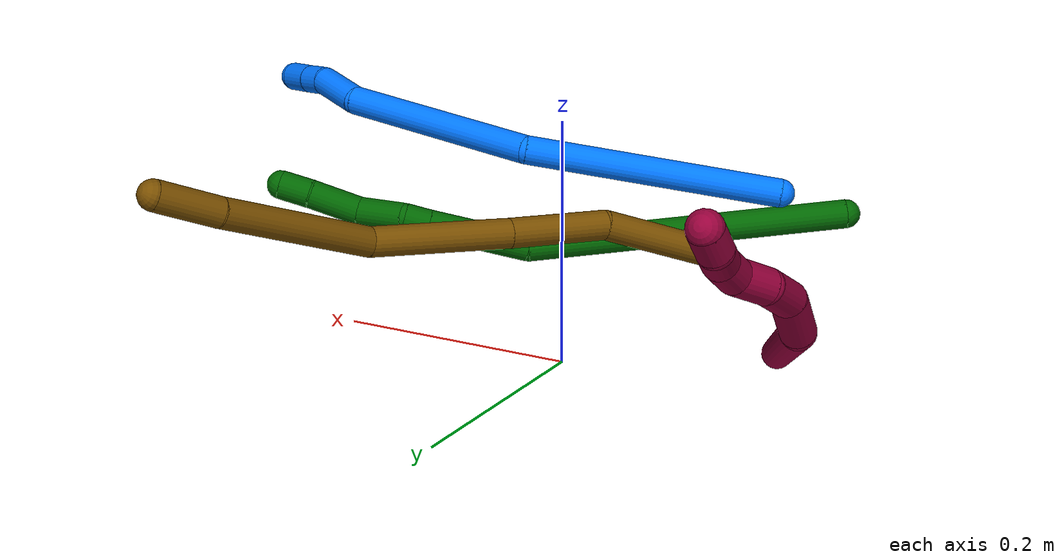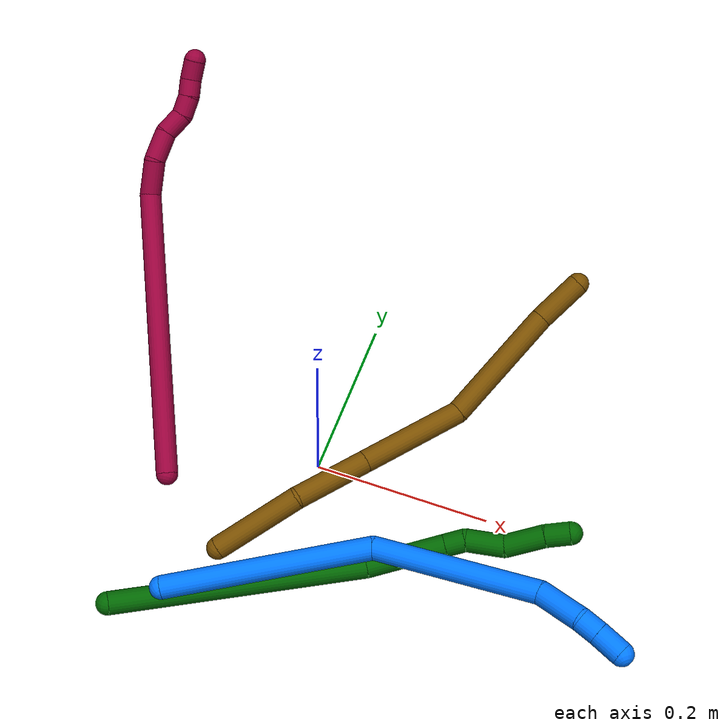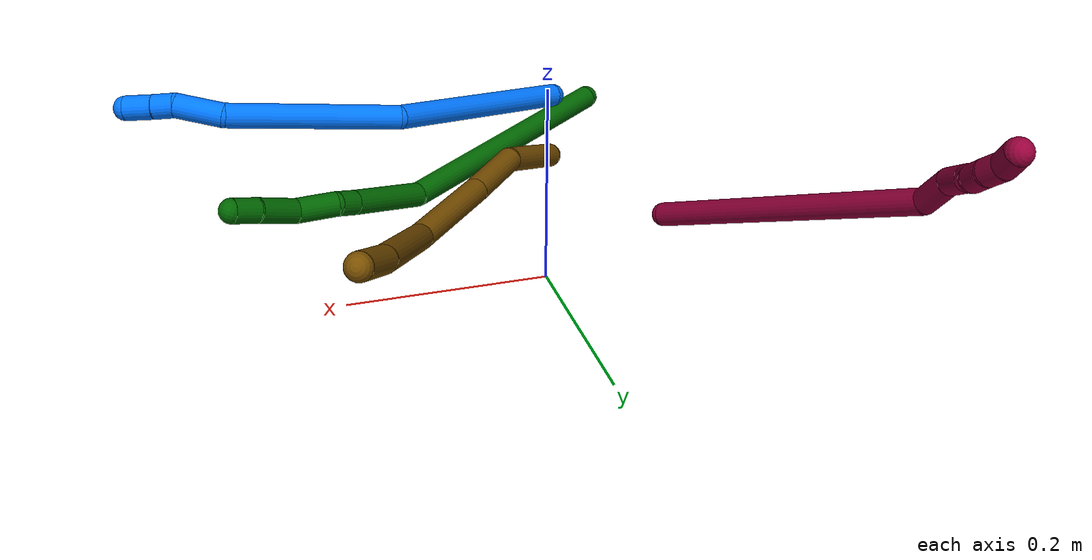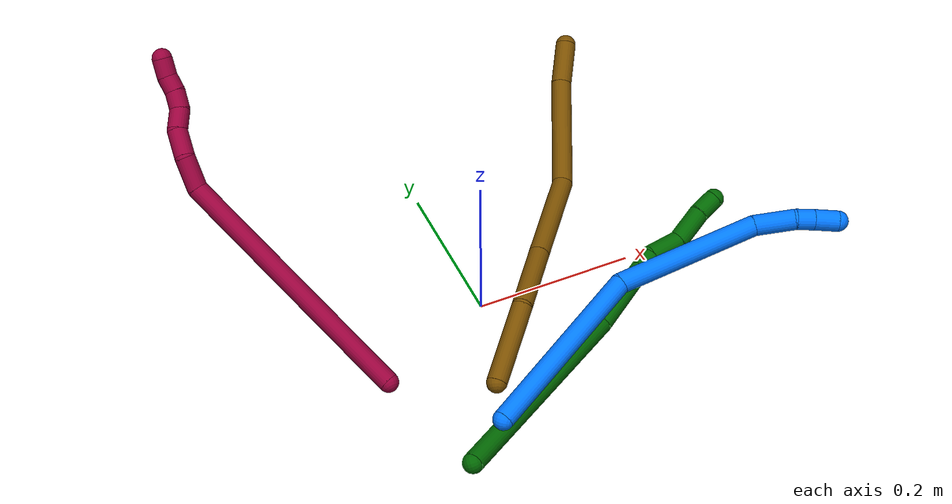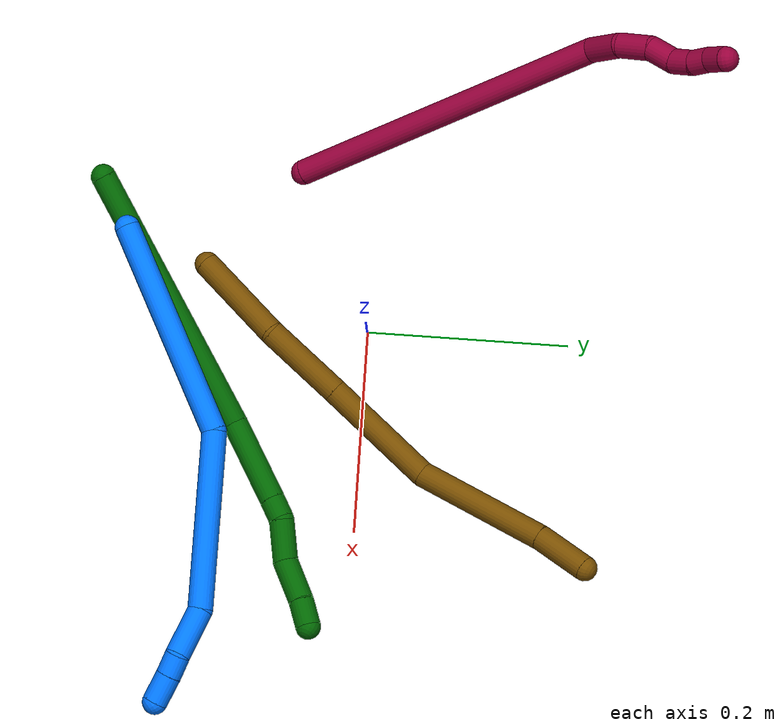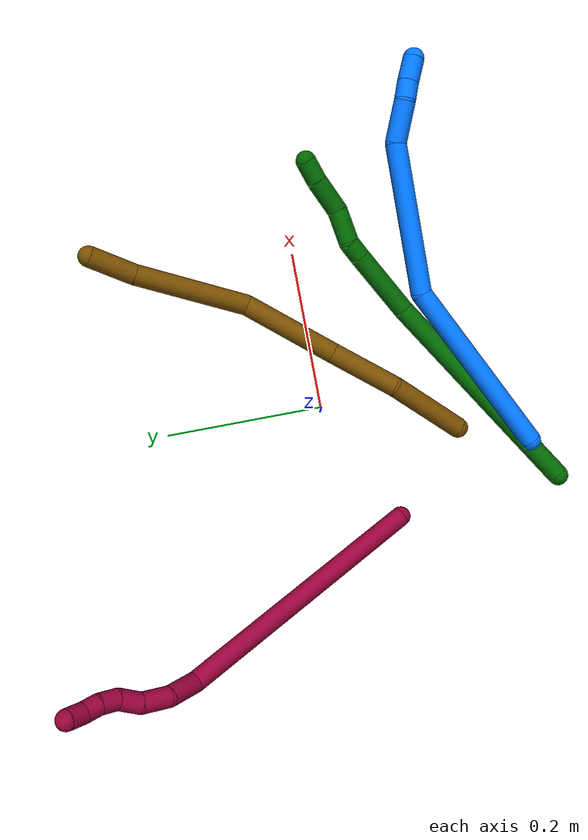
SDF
<sdf version="1.7">
 <world name="default">
  <model name="6">
   <static>0</static>
   <link name="6">
    <collision name="collision-cylinder-e_1_1_4">
     <pose>0.106081 0.048483 0.074376 -0.577685 0.873937 -0.275828</pose>
     <geometry><cylinder><radius>0.0125</radius><length>0.276662</length></cylinder></geometry>
     <surface>
      <friction><ode><mu>1.16</mu><mu2>1.16</mu2><slip1>0</slip1><slip2>0</slip2></ode></friction>
      <contact><ode><kp>1e+06</kp><kd>1</kd><max_vel>0</max_vel><min_depth>0.001</min_depth></ode></contact>
     </surface>
    </collision>
    <visual name="visual-cylinder-e_1_1_4">
     <pose>0.106081 0.048483 0.074376 -0.577685 0.873937 -0.275828</pose>
     <geometry><cylinder><radius>0.0125</radius><length>0.276662</length></cylinder></geometry>
     <material><ambient>0 0.392157 0.003922 1</ambient></material>
    </visual>
    <collision name="collision-cylinder-e_2_4_5">
     <pose>0.234899 0.120402 0.178198 -0.672221 0.543478 -0.194077</pose>
     <geometry><cylinder><radius>0.0125</radius><length>0.08794</length></cylinder></geometry>
     <surface>
      <friction><ode><mu>1.16</mu><mu2>1.16</mu2><slip1>0</slip1><slip2>0</slip2></ode></friction>
      <contact><ode><kp>1e+06</kp><kd>1</kd><max_vel>0</max_vel><min_depth>0.001</min_depth></ode></contact>
     </surface>
    </collision>
    <visual name="visual-cylinder-e_2_4_5">
     <pose>0.234899 0.120402 0.178198 -0.672221 0.543478 -0.194077</pose>
     <geometry><cylinder><radius>0.0125</radius><length>0.08794</length></cylinder></geometry>
     <material><ambient>0 0.392157 0.003922 1</ambient></material>
    </visual>
    <collision name="collision-cylinder-e_3_5_6">
     <pose>0.262987 0.149715 0.215215 -0.660172 0.509177 -0.177854</pose>
     <geometry><cylinder><radius>0.0125</radius><length>0.021953</length></cylinder></geometry>
     <surface>
      <friction><ode><mu>1.16</mu><mu2>1.16</mu2><slip1>0</slip1><slip2>0</slip2></ode></friction>
      <contact><ode><kp>1e+06</kp><kd>1</kd><max_vel>0</max_vel><min_depth>0.001</min_depth></ode></contact>
     </surface>
    </collision>
    <visual name="visual-cylinder-e_3_5_6">
     <pose>0.262987 0.149715 0.215215 -0.660172 0.509177 -0.177854</pose>
     <geometry><cylinder><radius>0.0125</radius><length>0.021953</length></cylinder></geometry>
     <material><ambient>0 0.392157 0.003922 1</ambient></material>
    </visual>
    <collision name="collision-cylinder-e_4_6_7">
     <pose>0.279787 0.158746 0.239991 -0.181261 0.579577 -0.054184</pose>
     <geometry><cylinder><radius>0.0125</radius><length>0.041813</length></cylinder></geometry>
     <surface>
      <friction><ode><mu>1.16</mu><mu2>1.16</mu2><slip1>0</slip1><slip2>0</slip2></ode></friction>
      <contact><ode><kp>1e+06</kp><kd>1</kd><max_vel>0</max_vel><min_depth>0.001</min_depth></ode></contact>
     </surface>
    </collision>
    <visual name="visual-cylinder-e_4_6_7">
     <pose>0.279787 0.158746 0.239991 -0.181261 0.579577 -0.054184</pose>
     <geometry><cylinder><radius>0.0125</radius><length>0.041813</length></cylinder></geometry>
     <material><ambient>0 0.392157 0.003922 1</ambient></material>
    </visual>
    <collision name="collision-cylinder-e_5_7_8">
     <pose>0.300516 0.173887 0.273494 -0.634209 0.430037 -0.1431</pose>
     <geometry><cylinder><radius>0.0125</radius><length>0.044515</length></cylinder></geometry>
     <surface>
      <friction><ode><mu>1.16</mu><mu2>1.16</mu2><slip1>0</slip1><slip2>0</slip2></ode></friction>
      <contact><ode><kp>1e+06</kp><kd>1</kd><max_vel>0</max_vel><min_depth>0.001</min_depth></ode></contact>
     </surface>
    </collision>
    <visual name="visual-cylinder-e_5_7_8">
     <pose>0.300516 0.173887 0.273494 -0.634209 0.430037 -0.1431</pose>
     <geometry><cylinder><radius>0.0125</radius><length>0.044515</length></cylinder></geometry>
     <material><ambient>0 0.392157 0.003922 1</ambient></material>
    </visual>
    <collision name="collision-cylinder-e_6_8_2">
     <pose>0.31587 0.191496 0.30053 -0.482195 0.464542 -0.11619</pose>
     <geometry><cylinder><radius>0.0125</radius><length>0.027118</length></cylinder></geometry>
     <surface>
      <friction><ode><mu>1.16</mu><mu2>1.16</mu2><slip1>0</slip1><slip2>0</slip2></ode></friction>
      <contact><ode><kp>1e+06</kp><kd>1</kd><max_vel>0</max_vel><min_depth>0.001</min_depth></ode></contact>
     </surface>
    </collision>
    <visual name="visual-cylinder-e_6_8_2">
     <pose>0.31587 0.191496 0.30053 -0.482195 0.464542 -0.11619</pose>
     <geometry><cylinder><radius>0.0125</radius><length>0.027118</length></cylinder></geometry>
     <material><ambient>0 0.392157 0.003922 1</ambient></material>
    </visual>
    <collision name="collision-sphere-2">
     <pose>0.321945 0.197117 0.31127 0 -0 0</pose>
     <geometry><sphere><radius>0.0125</radius></sphere></geometry>
     <surface>
      <friction><ode><mu>1.16</mu><mu2>1.16</mu2><slip1>0</slip1><slip2>0</slip2></ode></friction>
      <contact><ode><kp>1e+06</kp><kd>1</kd><max_vel>0</max_vel><min_depth>0.001</min_depth></ode></contact>
     </surface>
    </collision>
    <visual name="visual-sphere-2">
     <pose>0.321945 0.197117 0.31127 0 -0 0</pose>
     <geometry><sphere><radius>0.0125</radius></sphere></geometry>
     <material><ambient>0 0.392157 0.003922 1</ambient></material>
    </visual>
    <collision name="collision-sphere-4">
     <pose>0.212161 0.096966 0.148751 0 -0 0</pose>
     <geometry><sphere><radius>0.0125</radius></sphere></geometry>
     <surface>
      <friction><ode><mu>1.16</mu><mu2>1.16</mu2><slip1>0</slip1><slip2>0</slip2></ode></friction>
      <contact><ode><kp>1e+06</kp><kd>1</kd><max_vel>0</max_vel><min_depth>0.001</min_depth></ode></contact>
     </surface>
    </collision>
    <visual name="visual-sphere-4">
     <pose>0.212161 0.096966 0.148751 0 -0 0</pose>
     <geometry><sphere><radius>0.0125</radius></sphere></geometry>
     <material><ambient>0 0.392157 0.003922 1</ambient></material>
    </visual>
    <collision name="collision-sphere-1">
     <geometry><sphere><radius>0.0125</radius></sphere></geometry>
     <surface>
      <friction><ode><mu>1.16</mu><mu2>1.16</mu2><slip1>0</slip1><slip2>0</slip2></ode></friction>
      <contact><ode><kp>1e+06</kp><kd>1</kd><max_vel>0</max_vel><min_depth>0.001</min_depth></ode></contact>
     </surface>
    </collision>
    <visual name="visual-sphere-1">
     <geometry><sphere><radius>0.0125</radius></sphere></geometry>
     <material><ambient>0 0.392157 0.003922 1</ambient></material>
    </visual>
    <collision name="collision-sphere-8">
     <pose>0.309796 0.185875 0.289791 0 -0 0</pose>
     <geometry><sphere><radius>0.0125</radius></sphere></geometry>
     <surface>
      <friction><ode><mu>1.16</mu><mu2>1.16</mu2><slip1>0</slip1><slip2>0</slip2></ode></friction>
      <contact><ode><kp>1e+06</kp><kd>1</kd><max_vel>0</max_vel><min_depth>0.001</min_depth></ode></contact>
     </surface>
    </collision>
    <visual name="visual-sphere-8">
     <pose>0.309796 0.185875 0.289791 0 -0 0</pose>
     <geometry><sphere><radius>0.0125</radius></sphere></geometry>
     <material><ambient>0 0.392157 0.003922 1</ambient></material>
    </visual>
    <collision name="collision-sphere-5">
     <pose>0.257636 0.143838 0.207645 0 -0 0</pose>
     <geometry><sphere><radius>0.0125</radius></sphere></geometry>
     <surface>
      <friction><ode><mu>1.16</mu><mu2>1.16</mu2><slip1>0</slip1><slip2>0</slip2></ode></friction>
      <contact><ode><kp>1e+06</kp><kd>1</kd><max_vel>0</max_vel><min_depth>0.001</min_depth></ode></contact>
     </surface>
    </collision>
    <visual name="visual-sphere-5">
     <pose>0.257636 0.143838 0.207645 0 -0 0</pose>
     <geometry><sphere><radius>0.0125</radius></sphere></geometry>
     <material><ambient>0 0.392157 0.003922 1</ambient></material>
    </visual>
    <collision name="collision-sphere-6">
     <pose>0.268338 0.155593 0.222786 0 -0 0</pose>
     <geometry><sphere><radius>0.0125</radius></sphere></geometry>
     <surface>
      <friction><ode><mu>1.16</mu><mu2>1.16</mu2><slip1>0</slip1><slip2>0</slip2></ode></friction>
      <contact><ode><kp>1e+06</kp><kd>1</kd><max_vel>0</max_vel><min_depth>0.001</min_depth></ode></contact>
     </surface>
    </collision>
    <visual name="visual-sphere-6">
     <pose>0.268338 0.155593 0.222786 0 -0 0</pose>
     <geometry><sphere><radius>0.0125</radius></sphere></geometry>
     <material><ambient>0 0.392157 0.003922 1</ambient></material>
    </visual>
    <collision name="collision-sphere-7">
     <pose>0.291237 0.161899 0.257197 0 -0 0</pose>
     <geometry><sphere><radius>0.0125</radius></sphere></geometry>
     <surface>
      <friction><ode><mu>1.16</mu><mu2>1.16</mu2><slip1>0</slip1><slip2>0</slip2></ode></friction>
      <contact><ode><kp>1e+06</kp><kd>1</kd><max_vel>0</max_vel><min_depth>0.001</min_depth></ode></contact>
     </surface>
    </collision>
    <visual name="visual-sphere-7">
     <pose>0.291237 0.161899 0.257197 0 -0 0</pose>
     <geometry><sphere><radius>0.0125</radius></sphere></geometry>
     <material><ambient>0 0.392157 0.003922 1</ambient></material>
    </visual>
    <inertial>
     <pose>0.178841 0.093719 0.142662 0 -0 0</pose>
     <mass>0.5</mass>
     <inertia>
      <ixx>0.000868</ixx>
      <ixy>0</ixy>
      <ixz>0</ixz>
      <iyy>0.001396</iyy>
      <iyz>0</iyz>
      <izz>-0.002041</izz>
     </inertia>
    </inertial>
   </link>
   <pose>-0.132357 -0.270367 0.072214 1.05449 0.735415 0.859907</pose>
  </model>
  <model name="8">
   <static>0</static>
   <link name="8">
    <collision name="collision-cylinder-e_1_1_4">
     <pose>0.011052 0.046044 0.158204 -0.283219 0.066973 -0.009551</pose>
     <geometry><cylinder><radius>0.0125</radius><length>0.330277</length></cylinder></geometry>
     <surface>
      <friction><ode><mu>1.16</mu><mu2>1.16</mu2><slip1>0</slip1><slip2>0</slip2></ode></friction>
      <contact><ode><kp>1e+06</kp><kd>1</kd><max_vel>0</max_vel><min_depth>0.001</min_depth></ode></contact>
     </surface>
    </collision>
    <visual name="visual-cylinder-e_1_1_4">
     <pose>0.011052 0.046044 0.158204 -0.283219 0.066973 -0.009551</pose>
     <geometry><cylinder><radius>0.0125</radius><length>0.330277</length></cylinder></geometry>
     <material><ambient>0.584314 0 0.227451 1</ambient></material>
    </visual>
    <collision name="collision-cylinder-e_2_4_5">
     <pose>0.0137 0.094037 0.335172 -0.103466 -0.419049 0.02202</pose>
     <geometry><cylinder><radius>0.0125</radius><length>0.041303</length></cylinder></geometry>
     <surface>
      <friction><ode><mu>1.16</mu><mu2>1.16</mu2><slip1>0</slip1><slip2>0</slip2></ode></friction>
      <contact><ode><kp>1e+06</kp><kd>1</kd><max_vel>0</max_vel><min_depth>0.001</min_depth></ode></contact>
     </surface>
    </collision>
    <visual name="visual-cylinder-e_2_4_5">
     <pose>0.0137 0.094037 0.335172 -0.103466 -0.419049 0.02202</pose>
     <geometry><cylinder><radius>0.0125</radius><length>0.041303</length></cylinder></geometry>
     <material><ambient>0.584314 0 0.227451 1</ambient></material>
    </visual>
    <collision name="collision-cylinder-e_3_5_6">
     <pose>0.002817 0.093354 0.370825 0.154533 -0.144097 -0.011175</pose>
     <geometry><cylinder><radius>0.0125</radius><length>0.034543</length></cylinder></geometry>
     <surface>
      <friction><ode><mu>1.16</mu><mu2>1.16</mu2><slip1>0</slip1><slip2>0</slip2></ode></friction>
      <contact><ode><kp>1e+06</kp><kd>1</kd><max_vel>0</max_vel><min_depth>0.001</min_depth></ode></contact>
     </surface>
    </collision>
    <visual name="visual-cylinder-e_3_5_6">
     <pose>0.002817 0.093354 0.370825 0.154533 -0.144097 -0.011175</pose>
     <geometry><cylinder><radius>0.0125</radius><length>0.034543</length></cylinder></geometry>
     <material><ambient>0.584314 0 0.227451 1</ambient></material>
    </visual>
    <collision name="collision-cylinder-e_4_6_7">
     <pose>-0.002127 0.083747 0.399376 0.539119 -0.179356 -0.049676</pose>
     <geometry><cylinder><radius>0.0125</radius><length>0.027623</length></cylinder></geometry>
     <surface>
      <friction><ode><mu>1.16</mu><mu2>1.16</mu2><slip1>0</slip1><slip2>0</slip2></ode></friction>
      <contact><ode><kp>1e+06</kp><kd>1</kd><max_vel>0</max_vel><min_depth>0.001</min_depth></ode></contact>
     </surface>
    </collision>
    <visual name="visual-cylinder-e_4_6_7">
     <pose>-0.002127 0.083747 0.399376 0.539119 -0.179356 -0.049676</pose>
     <geometry><cylinder><radius>0.0125</radius><length>0.027623</length></cylinder></geometry>
     <material><ambient>0.584314 0 0.227451 1</ambient></material>
    </visual>
    <collision name="collision-cylinder-e_5_7_8">
     <pose>-0.007546 0.075449 0.422104 0.118781 -0.259177 -0.015497</pose>
     <geometry><cylinder><radius>0.0125</radius><length>0.02306</length></cylinder></geometry>
     <surface>
      <friction><ode><mu>1.16</mu><mu2>1.16</mu2><slip1>0</slip1><slip2>0</slip2></ode></friction>
      <contact><ode><kp>1e+06</kp><kd>1</kd><max_vel>0</max_vel><min_depth>0.001</min_depth></ode></contact>
     </surface>
    </collision>
    <visual name="visual-cylinder-e_5_7_8">
     <pose>-0.007546 0.075449 0.422104 0.118781 -0.259177 -0.015497</pose>
     <geometry><cylinder><radius>0.0125</radius><length>0.02306</length></cylinder></geometry>
     <material><ambient>0.584314 0 0.227451 1</ambient></material>
    </visual>
    <collision name="collision-cylinder-e_6_8_9">
     <pose>-0.012658 0.07526 0.442975 -0.114946 -0.215223 0.012431</pose>
     <geometry><cylinder><radius>0.0125</radius><length>0.020204</length></cylinder></geometry>
     <surface>
      <friction><ode><mu>1.16</mu><mu2>1.16</mu2><slip1>0</slip1><slip2>0</slip2></ode></friction>
      <contact><ode><kp>1e+06</kp><kd>1</kd><max_vel>0</max_vel><min_depth>0.001</min_depth></ode></contact>
     </surface>
    </collision>
    <visual name="visual-cylinder-e_6_8_9">
     <pose>-0.012658 0.07526 0.442975 -0.114946 -0.215223 0.012431</pose>
     <geometry><cylinder><radius>0.0125</radius><length>0.020204</length></cylinder></geometry>
     <material><ambient>0.584314 0 0.227451 1</ambient></material>
    </visual>
    <collision name="collision-cylinder-e_7_9_2">
     <pose>-0.020101 0.07648 0.462986 -0.008586 -0.477743 0.002091</pose>
     <geometry><cylinder><radius>0.0125</radius><length>0.02299</length></cylinder></geometry>
     <surface>
      <friction><ode><mu>1.16</mu><mu2>1.16</mu2><slip1>0</slip1><slip2>0</slip2></ode></friction>
      <contact><ode><kp>1e+06</kp><kd>1</kd><max_vel>0</max_vel><min_depth>0.001</min_depth></ode></contact>
     </surface>
    </collision>
    <visual name="visual-cylinder-e_7_9_2">
     <pose>-0.020101 0.07648 0.462986 -0.008586 -0.477743 0.002091</pose>
     <geometry><cylinder><radius>0.0125</radius><length>0.02299</length></cylinder></geometry>
     <material><ambient>0.584314 0 0.227451 1</ambient></material>
    </visual>
    <collision name="collision-sphere-2">
     <pose>-0.025386 0.076567 0.473194 0 -0 0</pose>
     <geometry><sphere><radius>0.0125</radius></sphere></geometry>
     <surface>
      <friction><ode><mu>1.16</mu><mu2>1.16</mu2><slip1>0</slip1><slip2>0</slip2></ode></friction>
      <contact><ode><kp>1e+06</kp><kd>1</kd><max_vel>0</max_vel><min_depth>0.001</min_depth></ode></contact>
     </surface>
    </collision>
    <visual name="visual-sphere-2">
     <pose>-0.025386 0.076567 0.473194 0 -0 0</pose>
     <geometry><sphere><radius>0.0125</radius></sphere></geometry>
     <material><ambient>0.584314 0 0.227451 1</ambient></material>
    </visual>
    <collision name="collision-sphere-9">
     <pose>-0.014816 0.076392 0.452779 0 -0 0</pose>
     <geometry><sphere><radius>0.0125</radius></sphere></geometry>
     <surface>
      <friction><ode><mu>1.16</mu><mu2>1.16</mu2><slip1>0</slip1><slip2>0</slip2></ode></friction>
      <contact><ode><kp>1e+06</kp><kd>1</kd><max_vel>0</max_vel><min_depth>0.001</min_depth></ode></contact>
     </surface>
    </collision>
    <visual name="visual-sphere-9">
     <pose>-0.014816 0.076392 0.452779 0 -0 0</pose>
     <geometry><sphere><radius>0.0125</radius></sphere></geometry>
     <material><ambient>0.584314 0 0.227451 1</ambient></material>
    </visual>
    <collision name="collision-sphere-4">
     <pose>0.022103 0.092088 0.316408 0 -0 0</pose>
     <geometry><sphere><radius>0.0125</radius></sphere></geometry>
     <surface>
      <friction><ode><mu>1.16</mu><mu2>1.16</mu2><slip1>0</slip1><slip2>0</slip2></ode></friction>
      <contact><ode><kp>1e+06</kp><kd>1</kd><max_vel>0</max_vel><min_depth>0.001</min_depth></ode></contact>
     </surface>
    </collision>
    <visual name="visual-sphere-4">
     <pose>0.022103 0.092088 0.316408 0 -0 0</pose>
     <geometry><sphere><radius>0.0125</radius></sphere></geometry>
     <material><ambient>0.584314 0 0.227451 1</ambient></material>
    </visual>
    <collision name="collision-sphere-1">
     <geometry><sphere><radius>0.0125</radius></sphere></geometry>
     <surface>
      <friction><ode><mu>1.16</mu><mu2>1.16</mu2><slip1>0</slip1><slip2>0</slip2></ode></friction>
      <contact><ode><kp>1e+06</kp><kd>1</kd><max_vel>0</max_vel><min_depth>0.001</min_depth></ode></contact>
     </surface>
    </collision>
    <visual name="visual-sphere-1">
     <geometry><sphere><radius>0.0125</radius></sphere></geometry>
     <material><ambient>0.584314 0 0.227451 1</ambient></material>
    </visual>
    <collision name="collision-sphere-8">
     <pose>-0.010501 0.074128 0.433171 0 -0 0</pose>
     <geometry><sphere><radius>0.0125</radius></sphere></geometry>
     <surface>
      <friction><ode><mu>1.16</mu><mu2>1.16</mu2><slip1>0</slip1><slip2>0</slip2></ode></friction>
      <contact><ode><kp>1e+06</kp><kd>1</kd><max_vel>0</max_vel><min_depth>0.001</min_depth></ode></contact>
     </surface>
    </collision>
    <visual name="visual-sphere-8">
     <pose>-0.010501 0.074128 0.433171 0 -0 0</pose>
     <geometry><sphere><radius>0.0125</radius></sphere></geometry>
     <material><ambient>0.584314 0 0.227451 1</ambient></material>
    </visual>
    <collision name="collision-sphere-5">
     <pose>0.005297 0.095985 0.353936 0 -0 0</pose>
     <geometry><sphere><radius>0.0125</radius></sphere></geometry>
     <surface>
      <friction><ode><mu>1.16</mu><mu2>1.16</mu2><slip1>0</slip1><slip2>0</slip2></ode></friction>
      <contact><ode><kp>1e+06</kp><kd>1</kd><max_vel>0</max_vel><min_depth>0.001</min_depth></ode></contact>
     </surface>
    </collision>
    <visual name="visual-sphere-5">
     <pose>0.005297 0.095985 0.353936 0 -0 0</pose>
     <geometry><sphere><radius>0.0125</radius></sphere></geometry>
     <material><ambient>0.584314 0 0.227451 1</ambient></material>
    </visual>
    <collision name="collision-sphere-6">
     <pose>0.000337 0.090723 0.387713 0 -0 0</pose>
     <geometry><sphere><radius>0.0125</radius></sphere></geometry>
     <surface>
      <friction><ode><mu>1.16</mu><mu2>1.16</mu2><slip1>0</slip1><slip2>0</slip2></ode></friction>
      <contact><ode><kp>1e+06</kp><kd>1</kd><max_vel>0</max_vel><min_depth>0.001</min_depth></ode></contact>
     </surface>
    </collision>
    <visual name="visual-sphere-6">
     <pose>0.000337 0.090723 0.387713 0 -0 0</pose>
     <geometry><sphere><radius>0.0125</radius></sphere></geometry>
     <material><ambient>0.584314 0 0.227451 1</ambient></material>
    </visual>
    <collision name="collision-sphere-7">
     <pose>-0.004591 0.07677 0.411038 0 -0 0</pose>
     <geometry><sphere><radius>0.0125</radius></sphere></geometry>
     <surface>
      <friction><ode><mu>1.16</mu><mu2>1.16</mu2><slip1>0</slip1><slip2>0</slip2></ode></friction>
      <contact><ode><kp>1e+06</kp><kd>1</kd><max_vel>0</max_vel><min_depth>0.001</min_depth></ode></contact>
     </surface>
    </collision>
    <visual name="visual-sphere-7">
     <pose>-0.004591 0.07677 0.411038 0 -0 0</pose>
     <geometry><sphere><radius>0.0125</radius></sphere></geometry>
     <material><ambient>0.584314 0 0.227451 1</ambient></material>
    </visual>
    <inertial>
     <pose>0.006725 0.059296 0.238528 0 -0 0</pose>
     <mass>0.5</mass>
     <inertia>
      <ixx>0.002997</ixx>
      <ixy>0</ixy>
      <ixz>0</ixz>
      <iyy>0.002893</iyy>
      <iyz>0</iyz>
      <izz>-0.000998</izz>
     </inertia>
    </inertial>
   </link>
   <pose>-0.15463 -0.074552 0.011513 0.440231 1.09832 2.18079</pose>
  </model>
  <model name="12">
   <static>0</static>
   <link name="12">
    <collision name="collision-cylinder-e_1_1_4">
     <pose>0.011817 0.011833 0.047334 -0.244963 0.237626 -0.029388</pose>
     <geometry><cylinder><radius>0.0125</radius><length>0.100403</length></cylinder></geometry>
     <surface>
      <friction><ode><mu>1.16</mu><mu2>1.16</mu2><slip1>0</slip1><slip2>0</slip2></ode></friction>
      <contact><ode><kp>1e+06</kp><kd>1</kd><max_vel>0</max_vel><min_depth>0.001</min_depth></ode></contact>
     </surface>
    </collision>
    <visual name="visual-cylinder-e_1_1_4">
     <pose>0.011817 0.011833 0.047334 -0.244963 0.237626 -0.029388</pose>
     <geometry><cylinder><radius>0.0125</radius><length>0.100403</length></cylinder></geometry>
     <material><ambient>0.466667 0.301961 0 1</ambient></material>
    </visual>
    <collision name="collision-cylinder-e_2_4_5">
     <pose>0.025571 0.044029 0.131873 -0.500796 0.045637 -0.011674</pose>
     <geometry><cylinder><radius>0.0125</radius><length>0.084913</length></cylinder></geometry>
     <surface>
      <friction><ode><mu>1.16</mu><mu2>1.16</mu2><slip1>0</slip1><slip2>0</slip2></ode></friction>
      <contact><ode><kp>1e+06</kp><kd>1</kd><max_vel>0</max_vel><min_depth>0.001</min_depth></ode></contact>
     </surface>
    </collision>
    <visual name="visual-cylinder-e_2_4_5">
     <pose>0.025571 0.044029 0.131873 -0.500796 0.045637 -0.011674</pose>
     <geometry><cylinder><radius>0.0125</radius><length>0.084913</length></cylinder></geometry>
     <material><ambient>0.466667 0.301961 0 1</ambient></material>
    </visual>
    <collision name="collision-cylinder-e_3_5_6">
     <pose>0.031428 0.092137 0.221664 -0.48549 0.065823 -0.016305</pose>
     <geometry><cylinder><radius>0.0125</radius><length>0.119173</length></cylinder></geometry>
     <surface>
      <friction><ode><mu>1.16</mu><mu2>1.16</mu2><slip1>0</slip1><slip2>0</slip2></ode></friction>
      <contact><ode><kp>1e+06</kp><kd>1</kd><max_vel>0</max_vel><min_depth>0.001</min_depth></ode></contact>
     </surface>
    </collision>
    <visual name="visual-cylinder-e_3_5_6">
     <pose>0.031428 0.092137 0.221664 -0.48549 0.065823 -0.016305</pose>
     <geometry><cylinder><radius>0.0125</radius><length>0.119173</length></cylinder></geometry>
     <material><ambient>0.466667 0.301961 0 1</ambient></material>
    </visual>
    <collision name="collision-cylinder-e_4_6_7">
     <pose>0.033293 0.127459 0.343635 -0.108768 -0.029424 0.001602</pose>
     <geometry><cylinder><radius>0.0125</radius><length>0.139654</length></cylinder></geometry>
     <surface>
      <friction><ode><mu>1.16</mu><mu2>1.16</mu2><slip1>0</slip1><slip2>0</slip2></ode></friction>
      <contact><ode><kp>1e+06</kp><kd>1</kd><max_vel>0</max_vel><min_depth>0.001</min_depth></ode></contact>
     </surface>
    </collision>
    <visual name="visual-cylinder-e_4_6_7">
     <pose>0.033293 0.127459 0.343635 -0.108768 -0.029424 0.001602</pose>
     <geometry><cylinder><radius>0.0125</radius><length>0.139654</length></cylinder></geometry>
     <material><ambient>0.466667 0.301961 0 1</ambient></material>
    </visual>
    <collision name="collision-cylinder-e_5_7_2">
     <pose>0.033621 0.138562 0.440622 -0.127048 0.085414 -0.005436</pose>
     <geometry><cylinder><radius>0.0125</radius><length>0.055856</length></cylinder></geometry>
     <surface>
      <friction><ode><mu>1.16</mu><mu2>1.16</mu2><slip1>0</slip1><slip2>0</slip2></ode></friction>
      <contact><ode><kp>1e+06</kp><kd>1</kd><max_vel>0</max_vel><min_depth>0.001</min_depth></ode></contact>
     </surface>
    </collision>
    <visual name="visual-cylinder-e_5_7_2">
     <pose>0.033621 0.138562 0.440622 -0.127048 0.085414 -0.005436</pose>
     <geometry><cylinder><radius>0.0125</radius><length>0.055856</length></cylinder></geometry>
     <material><ambient>0.466667 0.301961 0 1</ambient></material>
    </visual>
    <collision name="collision-sphere-2">
     <pose>0.036004 0.142088 0.468224 0 -0 0</pose>
     <geometry><sphere><radius>0.0125</radius></sphere></geometry>
     <surface>
      <friction><ode><mu>1.16</mu><mu2>1.16</mu2><slip1>0</slip1><slip2>0</slip2></ode></friction>
      <contact><ode><kp>1e+06</kp><kd>1</kd><max_vel>0</max_vel><min_depth>0.001</min_depth></ode></contact>
     </surface>
    </collision>
    <visual name="visual-sphere-2">
     <pose>0.036004 0.142088 0.468224 0 -0 0</pose>
     <geometry><sphere><radius>0.0125</radius></sphere></geometry>
     <material><ambient>0.466667 0.301961 0 1</ambient></material>
    </visual>
    <collision name="collision-sphere-7">
     <pose>0.031238 0.135036 0.41302 0 -0 0</pose>
     <geometry><sphere><radius>0.0125</radius></sphere></geometry>
     <surface>
      <friction><ode><mu>1.16</mu><mu2>1.16</mu2><slip1>0</slip1><slip2>0</slip2></ode></friction>
      <contact><ode><kp>1e+06</kp><kd>1</kd><max_vel>0</max_vel><min_depth>0.001</min_depth></ode></contact>
     </surface>
    </collision>
    <visual name="visual-sphere-7">
     <pose>0.031238 0.135036 0.41302 0 -0 0</pose>
     <geometry><sphere><radius>0.0125</radius></sphere></geometry>
     <material><ambient>0.466667 0.301961 0 1</ambient></material>
    </visual>
    <collision name="collision-sphere-6">
     <pose>0.035347 0.119883 0.274251 0 -0 0</pose>
     <geometry><sphere><radius>0.0125</radius></sphere></geometry>
     <surface>
      <friction><ode><mu>1.16</mu><mu2>1.16</mu2><slip1>0</slip1><slip2>0</slip2></ode></friction>
      <contact><ode><kp>1e+06</kp><kd>1</kd><max_vel>0</max_vel><min_depth>0.001</min_depth></ode></contact>
     </surface>
    </collision>
    <visual name="visual-sphere-6">
     <pose>0.035347 0.119883 0.274251 0 -0 0</pose>
     <geometry><sphere><radius>0.0125</radius></sphere></geometry>
     <material><ambient>0.466667 0.301961 0 1</ambient></material>
    </visual>
    <collision name="collision-sphere-5">
     <pose>0.027508 0.064392 0.169077 0 -0 0</pose>
     <geometry><sphere><radius>0.0125</radius></sphere></geometry>
     <surface>
      <friction><ode><mu>1.16</mu><mu2>1.16</mu2><slip1>0</slip1><slip2>0</slip2></ode></friction>
      <contact><ode><kp>1e+06</kp><kd>1</kd><max_vel>0</max_vel><min_depth>0.001</min_depth></ode></contact>
     </surface>
    </collision>
    <visual name="visual-sphere-5">
     <pose>0.027508 0.064392 0.169077 0 -0 0</pose>
     <geometry><sphere><radius>0.0125</radius></sphere></geometry>
     <material><ambient>0.466667 0.301961 0 1</ambient></material>
    </visual>
    <collision name="collision-sphere-1">
     <geometry><sphere><radius>0.0125</radius></sphere></geometry>
     <surface>
      <friction><ode><mu>1.16</mu><mu2>1.16</mu2><slip1>0</slip1><slip2>0</slip2></ode></friction>
      <contact><ode><kp>1e+06</kp><kd>1</kd><max_vel>0</max_vel><min_depth>0.001</min_depth></ode></contact>
     </surface>
    </collision>
    <visual name="visual-sphere-1">
     <geometry><sphere><radius>0.0125</radius></sphere></geometry>
     <material><ambient>0.466667 0.301961 0 1</ambient></material>
    </visual>
    <collision name="collision-sphere-4">
     <pose>0.023635 0.023666 0.094669 0 -0 0</pose>
     <geometry><sphere><radius>0.0125</radius></sphere></geometry>
     <surface>
      <friction><ode><mu>1.16</mu><mu2>1.16</mu2><slip1>0</slip1><slip2>0</slip2></ode></friction>
      <contact><ode><kp>1e+06</kp><kd>1</kd><max_vel>0</max_vel><min_depth>0.001</min_depth></ode></contact>
     </surface>
    </collision>
    <visual name="visual-sphere-4">
     <pose>0.023635 0.023666 0.094669 0 -0 0</pose>
     <geometry><sphere><radius>0.0125</radius></sphere></geometry>
     <material><ambient>0.466667 0.301961 0 1</ambient></material>
    </visual>
    <inertial>
     <pose>0.027261 0.082894 0.229937 0 -0 0</pose>
     <mass>0.5</mass>
     <inertia>
      <ixx>0.000532</ixx>
      <ixy>0</ixy>
      <ixz>0</ixz>
      <iyy>0.000516</iyy>
      <iyz>0</iyz>
      <izz>-0.000133</izz>
     </inertia>
    </inertial>
   </link>
   <pose>-0.053876 -0.162396 0.055115 -1.05559 -0.44336 -0.64432</pose>
  </model>
  <model name="14">
   <static>0</static>
   <link name="14">
    <collision name="collision-cylinder-e_1_1_4">
     <pose>0.106111 -0.025311 0.023575 0.82089 1.25568 0.61186</pose>
     <geometry><cylinder><radius>0.0125</radius><length>0.223213</length></cylinder></geometry>
     <surface>
      <friction><ode><mu>1.16</mu><mu2>1.16</mu2><slip1>0</slip1><slip2>0</slip2></ode></friction>
      <contact><ode><kp>1e+06</kp><kd>1</kd><max_vel>0</max_vel><min_depth>0.001</min_depth></ode></contact>
     </surface>
    </collision>
    <visual name="visual-cylinder-e_1_1_4">
     <pose>0.106111 -0.025311 0.023575 0.82089 1.25568 0.61186</pose>
     <geometry><cylinder><radius>0.0125</radius><length>0.223213</length></cylinder></geometry>
     <material><ambient>0 0.462745 1 1</ambient></material>
    </visual>
    <collision name="collision-cylinder-e_2_4_5">
     <pose>0.278402 -0.067009 0.103208 0.284408 0.847738 0.129024</pose>
     <geometry><cylinder><radius>0.0125</radius><length>0.176531</length></cylinder></geometry>
     <surface>
      <friction><ode><mu>1.16</mu><mu2>1.16</mu2><slip1>0</slip1><slip2>0</slip2></ode></friction>
      <contact><ode><kp>1e+06</kp><kd>1</kd><max_vel>0</max_vel><min_depth>0.001</min_depth></ode></contact>
     </surface>
    </collision>
    <visual name="visual-cylinder-e_2_4_5">
     <pose>0.278402 -0.067009 0.103208 0.284408 0.847738 0.129024</pose>
     <geometry><cylinder><radius>0.0125</radius><length>0.176531</length></cylinder></geometry>
     <material><ambient>0 0.462745 1 1</ambient></material>
    </visual>
    <collision name="collision-cylinder-e_3_5_6">
     <pose>0.35671 -0.084032 0.180731 0.029571 0.514053 0.007773</pose>
     <geometry><cylinder><radius>0.0125</radius><length>0.049326</length></cylinder></geometry>
     <surface>
      <friction><ode><mu>1.16</mu><mu2>1.16</mu2><slip1>0</slip1><slip2>0</slip2></ode></friction>
      <contact><ode><kp>1e+06</kp><kd>1</kd><max_vel>0</max_vel><min_depth>0.001</min_depth></ode></contact>
     </surface>
    </collision>
    <visual name="visual-cylinder-e_3_5_6">
     <pose>0.35671 -0.084032 0.180731 0.029571 0.514053 0.007773</pose>
     <geometry><cylinder><radius>0.0125</radius><length>0.049326</length></cylinder></geometry>
     <material><ambient>0 0.462745 1 1</ambient></material>
    </visual>
    <collision name="collision-cylinder-e_4_6_7">
     <pose>0.373391 -0.087901 0.21155 0.332913 0.431333 0.07358</pose>
     <geometry><cylinder><radius>0.0125</radius><length>0.021787</length></cylinder></geometry>
     <surface>
      <friction><ode><mu>1.16</mu><mu2>1.16</mu2><slip1>0</slip1><slip2>0</slip2></ode></friction>
      <contact><ode><kp>1e+06</kp><kd>1</kd><max_vel>0</max_vel><min_depth>0.001</min_depth></ode></contact>
     </surface>
    </collision>
    <visual name="visual-cylinder-e_4_6_7">
     <pose>0.373391 -0.087901 0.21155 0.332913 0.431333 0.07358</pose>
     <geometry><cylinder><radius>0.0125</radius><length>0.021787</length></cylinder></geometry>
     <material><ambient>0 0.462745 1 1</ambient></material>
    </visual>
    <collision name="collision-cylinder-e_5_7_2">
     <pose>0.383362 -0.095111 0.233832 0.298354 0.380895 0.057932</pose>
     <geometry><cylinder><radius>0.0125</radius><length>0.029143</length></cylinder></geometry>
     <surface>
      <friction><ode><mu>1.16</mu><mu2>1.16</mu2><slip1>0</slip1><slip2>0</slip2></ode></friction>
      <contact><ode><kp>1e+06</kp><kd>1</kd><max_vel>0</max_vel><min_depth>0.001</min_depth></ode></contact>
     </surface>
    </collision>
    <visual name="visual-cylinder-e_5_7_2">
     <pose>0.383362 -0.095111 0.233832 0.298354 0.380895 0.057932</pose>
     <geometry><cylinder><radius>0.0125</radius><length>0.029143</length></cylinder></geometry>
     <material><ambient>0 0.462745 1 1</ambient></material>
    </visual>
    <collision name="collision-sphere-2">
     <pose>0.388779 -0.099087 0.246762 0 -0 0</pose>
     <geometry><sphere><radius>0.0125</radius></sphere></geometry>
     <surface>
      <friction><ode><mu>1.16</mu><mu2>1.16</mu2><slip1>0</slip1><slip2>0</slip2></ode></friction>
      <contact><ode><kp>1e+06</kp><kd>1</kd><max_vel>0</max_vel><min_depth>0.001</min_depth></ode></contact>
     </surface>
    </collision>
    <visual name="visual-sphere-2">
     <pose>0.388779 -0.099087 0.246762 0 -0 0</pose>
     <geometry><sphere><radius>0.0125</radius></sphere></geometry>
     <material><ambient>0 0.462745 1 1</ambient></material>
    </visual>
    <collision name="collision-sphere-7">
     <pose>0.377945 -0.091135 0.220902 0 -0 0</pose>
     <geometry><sphere><radius>0.0125</radius></sphere></geometry>
     <surface>
      <friction><ode><mu>1.16</mu><mu2>1.16</mu2><slip1>0</slip1><slip2>0</slip2></ode></friction>
      <contact><ode><kp>1e+06</kp><kd>1</kd><max_vel>0</max_vel><min_depth>0.001</min_depth></ode></contact>
     </surface>
    </collision>
    <visual name="visual-sphere-7">
     <pose>0.377945 -0.091135 0.220902 0 -0 0</pose>
     <geometry><sphere><radius>0.0125</radius></sphere></geometry>
     <material><ambient>0 0.462745 1 1</ambient></material>
    </visual>
    <collision name="collision-sphere-6">
     <pose>0.368837 -0.084667 0.202197 0 -0 0</pose>
     <geometry><sphere><radius>0.0125</radius></sphere></geometry>
     <surface>
      <friction><ode><mu>1.16</mu><mu2>1.16</mu2><slip1>0</slip1><slip2>0</slip2></ode></friction>
      <contact><ode><kp>1e+06</kp><kd>1</kd><max_vel>0</max_vel><min_depth>0.001</min_depth></ode></contact>
     </surface>
    </collision>
    <visual name="visual-sphere-6">
     <pose>0.368837 -0.084667 0.202197 0 -0 0</pose>
     <geometry><sphere><radius>0.0125</radius></sphere></geometry>
     <material><ambient>0 0.462745 1 1</ambient></material>
    </visual>
    <collision name="collision-sphere-5">
     <pose>0.344583 -0.083397 0.159265 0 -0 0</pose>
     <geometry><sphere><radius>0.0125</radius></sphere></geometry>
     <surface>
      <friction><ode><mu>1.16</mu><mu2>1.16</mu2><slip1>0</slip1><slip2>0</slip2></ode></friction>
      <contact><ode><kp>1e+06</kp><kd>1</kd><max_vel>0</max_vel><min_depth>0.001</min_depth></ode></contact>
     </surface>
    </collision>
    <visual name="visual-sphere-5">
     <pose>0.344583 -0.083397 0.159265 0 -0 0</pose>
     <geometry><sphere><radius>0.0125</radius></sphere></geometry>
     <material><ambient>0 0.462745 1 1</ambient></material>
    </visual>
    <collision name="collision-sphere-1">
     <geometry><sphere><radius>0.0125</radius></sphere></geometry>
     <surface>
      <friction><ode><mu>1.16</mu><mu2>1.16</mu2><slip1>0</slip1><slip2>0</slip2></ode></friction>
      <contact><ode><kp>1e+06</kp><kd>1</kd><max_vel>0</max_vel><min_depth>0.001</min_depth></ode></contact>
     </surface>
    </collision>
    <visual name="visual-sphere-1">
     <geometry><sphere><radius>0.0125</radius></sphere></geometry>
     <material><ambient>0 0.462745 1 1</ambient></material>
    </visual>
    <collision name="collision-sphere-4">
     <pose>0.212222 -0.050622 0.04715 0 -0 0</pose>
     <geometry><sphere><radius>0.0125</radius></sphere></geometry>
     <surface>
      <friction><ode><mu>1.16</mu><mu2>1.16</mu2><slip1>0</slip1><slip2>0</slip2></ode></friction>
      <contact><ode><kp>1e+06</kp><kd>1</kd><max_vel>0</max_vel><min_depth>0.001</min_depth></ode></contact>
     </surface>
    </collision>
    <visual name="visual-sphere-4">
     <pose>0.212222 -0.050622 0.04715 0 -0 0</pose>
     <geometry><sphere><radius>0.0125</radius></sphere></geometry>
     <material><ambient>0 0.462745 1 1</ambient></material>
    </visual>
    <inertial>
     <pose>0.219469 -0.052622 0.08764 0 -0 0</pose>
     <mass>0.5</mass>
     <inertia>
      <ixx>0.000794</ixx>
      <ixy>0</ixy>
      <ixz>0</ixz>
      <iyy>0.001567</iyy>
      <iyz>0</iyz>
      <izz>-0.000927</izz>
     </inertia>
    </inertial>
   </link>
   <pose>-0.082514 -0.242307 0.090894 1.56574 -0.40389 0.691856</pose>
  </model>
 </world>
</sdf>
